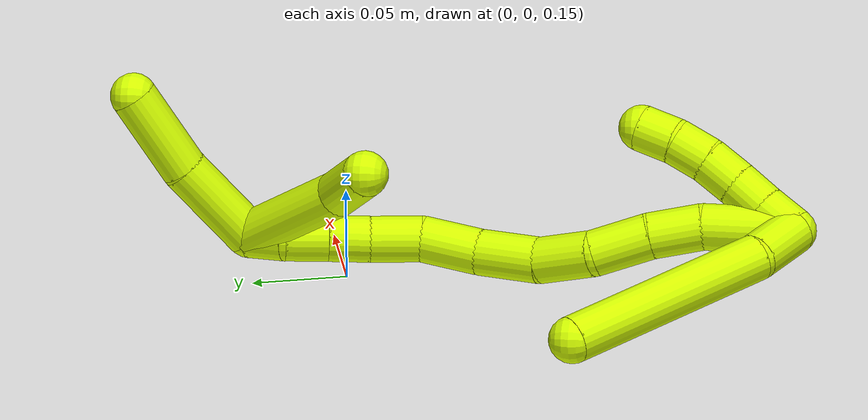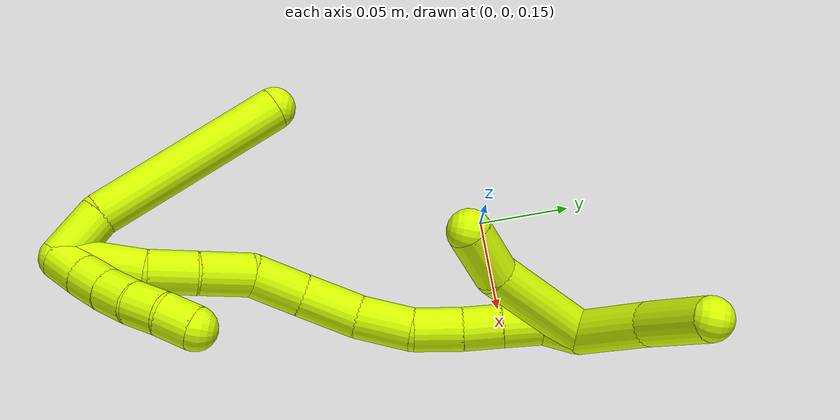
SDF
<sdf version="1.7">
 <world name="default">
  <model name="15">
   <static>0</static>
   <link name="15">
    <collision name="collision-cylinder-e_1_2_8">
     <pose>-0.013945 -0.003069 -0.007731 2.76369 -1.03298 -2.49199</pose>
     <geometry><cylinder><radius>0.0125</radius><length>0.032474</length></cylinder></geometry>
     <surface>
      <friction><ode><mu>1.16</mu><mu2>1.16</mu2><slip1>0</slip1><slip2>0</slip2></ode></friction>
      <contact><ode><kp>1e+06</kp><kd>1</kd><max_vel>0</max_vel><min_depth>0.001</min_depth></ode></contact>
     </surface>
    </collision>
    <visual name="visual-cylinder-e_1_2_8">
     <pose>-0.013945 -0.003069 -0.007731 2.76369 -1.03298 -2.49199</pose>
     <geometry><cylinder><radius>0.0125</radius><length>0.032474</length></cylinder></geometry>
     <material><ambient>0.835294 1 0 1</ambient></material>
    </visual>
    <collision name="collision-cylinder-e_2_8_6">
     <pose>-0.067975 -0.016939 -0.057049 2.88748 -0.750717 -2.5146</pose>
     <geometry><cylinder><radius>0.0125</radius><length>0.117526</length></cylinder></geometry>
     <surface>
      <friction><ode><mu>1.16</mu><mu2>1.16</mu2><slip1>0</slip1><slip2>0</slip2></ode></friction>
      <contact><ode><kp>1e+06</kp><kd>1</kd><max_vel>0</max_vel><min_depth>0.001</min_depth></ode></contact>
     </surface>
    </collision>
    <visual name="visual-cylinder-e_2_8_6">
     <pose>-0.067975 -0.016939 -0.057049 2.88748 -0.750717 -2.5146</pose>
     <geometry><cylinder><radius>0.0125</radius><length>0.117526</length></cylinder></geometry>
     <material><ambient>0.835294 1 0 1</ambient></material>
    </visual>
    <collision name="collision-cylinder-e_1_2_9">
     <pose>0.003462 0.004935 -0.007979 -2.5877 0.353517 -1.12207</pose>
     <geometry><cylinder><radius>0.0125</radius><length>0.02</length></cylinder></geometry>
     <surface>
      <friction><ode><mu>1.16</mu><mu2>1.16</mu2><slip1>0</slip1><slip2>0</slip2></ode></friction>
      <contact><ode><kp>1e+06</kp><kd>1</kd><max_vel>0</max_vel><min_depth>0.001</min_depth></ode></contact>
     </surface>
    </collision>
    <visual name="visual-cylinder-e_1_2_9">
     <pose>0.003462 0.004935 -0.007979 -2.5877 0.353517 -1.12207</pose>
     <geometry><cylinder><radius>0.0125</radius><length>0.02</length></cylinder></geometry>
     <material><ambient>0.835294 1 0 1</ambient></material>
    </visual>
    <collision name="collision-cylinder-e_2_9_10">
     <pose>0.009639 0.01551 -0.023756 -2.51539 0.274957 -0.807704</pose>
     <geometry><cylinder><radius>0.0125</radius><length>0.02</length></cylinder></geometry>
     <surface>
      <friction><ode><mu>1.16</mu><mu2>1.16</mu2><slip1>0</slip1><slip2>0</slip2></ode></friction>
      <contact><ode><kp>1e+06</kp><kd>1</kd><max_vel>0</max_vel><min_depth>0.001</min_depth></ode></contact>
     </surface>
    </collision>
    <visual name="visual-cylinder-e_2_9_10">
     <pose>0.009639 0.01551 -0.023756 -2.51539 0.274957 -0.807704</pose>
     <geometry><cylinder><radius>0.0125</radius><length>0.02</length></cylinder></geometry>
     <material><ambient>0.835294 1 0 1</ambient></material>
    </visual>
    <collision name="collision-cylinder-e_3_10_11">
     <pose>0.014265 0.026815 -0.039571 -2.52645 0.192273 -0.589481</pose>
     <geometry><cylinder><radius>0.0125</radius><length>0.02</length></cylinder></geometry>
     <surface>
      <friction><ode><mu>1.16</mu><mu2>1.16</mu2><slip1>0</slip1><slip2>0</slip2></ode></friction>
      <contact><ode><kp>1e+06</kp><kd>1</kd><max_vel>0</max_vel><min_depth>0.001</min_depth></ode></contact>
     </surface>
    </collision>
    <visual name="visual-cylinder-e_3_10_11">
     <pose>0.014265 0.026815 -0.039571 -2.52645 0.192273 -0.589481</pose>
     <geometry><cylinder><radius>0.0125</radius><length>0.02</length></cylinder></geometry>
     <material><ambient>0.835294 1 0 1</ambient></material>
    </visual>
    <collision name="collision-cylinder-e_4_11_12">
     <pose>0.017479 0.03705 -0.056386 -2.66254 0.130702 -0.523652</pose>
     <geometry><cylinder><radius>0.0125</radius><length>0.02</length></cylinder></geometry>
     <surface>
      <friction><ode><mu>1.16</mu><mu2>1.16</mu2><slip1>0</slip1><slip2>0</slip2></ode></friction>
      <contact><ode><kp>1e+06</kp><kd>1</kd><max_vel>0</max_vel><min_depth>0.001</min_depth></ode></contact>
     </surface>
    </collision>
    <visual name="visual-cylinder-e_4_11_12">
     <pose>0.017479 0.03705 -0.056386 -2.66254 0.130702 -0.523652</pose>
     <geometry><cylinder><radius>0.0125</radius><length>0.02</length></cylinder></geometry>
     <material><ambient>0.835294 1 0 1</ambient></material>
    </visual>
    <collision name="collision-cylinder-e_5_12_5">
     <pose>0.020813 0.044437 -0.074562 -2.84974 0.204481 -1.2189</pose>
     <geometry><cylinder><radius>0.0125</radius><length>0.02</length></cylinder></geometry>
     <surface>
      <friction><ode><mu>1.16</mu><mu2>1.16</mu2><slip1>0</slip1><slip2>0</slip2></ode></friction>
      <contact><ode><kp>1e+06</kp><kd>1</kd><max_vel>0</max_vel><min_depth>0.001</min_depth></ode></contact>
     </surface>
    </collision>
    <visual name="visual-cylinder-e_5_12_5">
     <pose>0.020813 0.044437 -0.074562 -2.84974 0.204481 -1.2189</pose>
     <geometry><cylinder><radius>0.0125</radius><length>0.02</length></cylinder></geometry>
     <material><ambient>0.835294 1 0 1</ambient></material>
    </visual>
    <collision name="collision-cylinder-e_1_2_13">
     <pose>-0.00094 0.000632 -0.023907 -3.11516 -0.039291 1.95719</pose>
     <geometry><cylinder><radius>0.0125</radius><length>0.047868</length></cylinder></geometry>
     <surface>
      <friction><ode><mu>1.16</mu><mu2>1.16</mu2><slip1>0</slip1><slip2>0</slip2></ode></friction>
      <contact><ode><kp>1e+06</kp><kd>1</kd><max_vel>0</max_vel><min_depth>0.001</min_depth></ode></contact>
     </surface>
    </collision>
    <visual name="visual-cylinder-e_1_2_13">
     <pose>-0.00094 0.000632 -0.023907 -3.11516 -0.039291 1.95719</pose>
     <geometry><cylinder><radius>0.0125</radius><length>0.047868</length></cylinder></geometry>
     <material><ambient>0.835294 1 0 1</ambient></material>
    </visual>
    <collision name="collision-cylinder-e_2_13_14">
     <pose>-0.004125 -0.001073 -0.061641 2.97416 -0.1587 -1.51701</pose>
     <geometry><cylinder><radius>0.0125</radius><length>0.028403</length></cylinder></geometry>
     <surface>
      <friction><ode><mu>1.16</mu><mu2>1.16</mu2><slip1>0</slip1><slip2>0</slip2></ode></friction>
      <contact><ode><kp>1e+06</kp><kd>1</kd><max_vel>0</max_vel><min_depth>0.001</min_depth></ode></contact>
     </surface>
    </collision>
    <visual name="visual-cylinder-e_2_13_14">
     <pose>-0.004125 -0.001073 -0.061641 2.97416 -0.1587 -1.51701</pose>
     <geometry><cylinder><radius>0.0125</radius><length>0.028403</length></cylinder></geometry>
     <material><ambient>0.835294 1 0 1</ambient></material>
    </visual>
    <collision name="collision-cylinder-e_3_14_15">
     <pose>-0.008856 -0.008002 -0.090361 2.84251 -0.158227 -0.968746</pose>
     <geometry><cylinder><radius>0.0125</radius><length>0.031565</length></cylinder></geometry>
     <surface>
      <friction><ode><mu>1.16</mu><mu2>1.16</mu2><slip1>0</slip1><slip2>0</slip2></ode></friction>
      <contact><ode><kp>1e+06</kp><kd>1</kd><max_vel>0</max_vel><min_depth>0.001</min_depth></ode></contact>
     </surface>
    </collision>
    <visual name="visual-cylinder-e_3_14_15">
     <pose>-0.008856 -0.008002 -0.090361 2.84251 -0.158227 -0.968746</pose>
     <geometry><cylinder><radius>0.0125</radius><length>0.031565</length></cylinder></geometry>
     <material><ambient>0.835294 1 0 1</ambient></material>
    </visual>
    <collision name="collision-cylinder-e_4_15_16">
     <pose>-0.008526 -0.015982 -0.120316 2.9203 0.180457 1.36684</pose>
     <geometry><cylinder><radius>0.0125</radius><length>0.031385</length></cylinder></geometry>
     <surface>
      <friction><ode><mu>1.16</mu><mu2>1.16</mu2><slip1>0</slip1><slip2>0</slip2></ode></friction>
      <contact><ode><kp>1e+06</kp><kd>1</kd><max_vel>0</max_vel><min_depth>0.001</min_depth></ode></contact>
     </surface>
    </collision>
    <visual name="visual-cylinder-e_4_15_16">
     <pose>-0.008526 -0.015982 -0.120316 2.9203 0.180457 1.36684</pose>
     <geometry><cylinder><radius>0.0125</radius><length>0.031385</length></cylinder></geometry>
     <material><ambient>0.835294 1 0 1</ambient></material>
    </visual>
    <collision name="collision-cylinder-e_5_16_17">
     <pose>-0.002675 -0.018634 -0.152295 -3.09808 0.177288 -2.6614</pose>
     <geometry><cylinder><radius>0.0125</radius><length>0.034407</length></cylinder></geometry>
     <surface>
      <friction><ode><mu>1.16</mu><mu2>1.16</mu2><slip1>0</slip1><slip2>0</slip2></ode></friction>
      <contact><ode><kp>1e+06</kp><kd>1</kd><max_vel>0</max_vel><min_depth>0.001</min_depth></ode></contact>
     </surface>
    </collision>
    <visual name="visual-cylinder-e_5_16_17">
     <pose>-0.002675 -0.018634 -0.152295 -3.09808 0.177288 -2.6614</pose>
     <geometry><cylinder><radius>0.0125</radius><length>0.034407</length></cylinder></geometry>
     <material><ambient>0.835294 1 0 1</ambient></material>
    </visual>
    <collision name="collision-cylinder-e_6_17_18">
     <pose>0.000988 -0.014953 -0.185001 -2.95718 0.03916 -0.417371</pose>
     <geometry><cylinder><radius>0.0125</radius><length>0.032146</length></cylinder></geometry>
     <surface>
      <friction><ode><mu>1.16</mu><mu2>1.16</mu2><slip1>0</slip1><slip2>0</slip2></ode></friction>
      <contact><ode><kp>1e+06</kp><kd>1</kd><max_vel>0</max_vel><min_depth>0.001</min_depth></ode></contact>
     </surface>
    </collision>
    <visual name="visual-cylinder-e_6_17_18">
     <pose>0.000988 -0.014953 -0.185001 -2.95718 0.03916 -0.417371</pose>
     <geometry><cylinder><radius>0.0125</radius><length>0.032146</length></cylinder></geometry>
     <material><ambient>0.835294 1 0 1</ambient></material>
    </visual>
    <collision name="collision-cylinder-e_7_18_19">
     <pose>-0.001229 -0.011683 -0.21453 -3.11794 -0.204193 2.91177</pose>
     <geometry><cylinder><radius>0.0125</radius><length>0.028072</length></cylinder></geometry>
     <surface>
      <friction><ode><mu>1.16</mu><mu2>1.16</mu2><slip1>0</slip1><slip2>0</slip2></ode></friction>
      <contact><ode><kp>1e+06</kp><kd>1</kd><max_vel>0</max_vel><min_depth>0.001</min_depth></ode></contact>
     </surface>
    </collision>
    <visual name="visual-cylinder-e_7_18_19">
     <pose>-0.001229 -0.011683 -0.21453 -3.11794 -0.204193 2.91177</pose>
     <geometry><cylinder><radius>0.0125</radius><length>0.028072</length></cylinder></geometry>
     <material><ambient>0.835294 1 0 1</ambient></material>
    </visual>
    <collision name="collision-cylinder-e_8_19_20">
     <pose>-0.007124 -0.010532 -0.239077 -3.06534 -0.274209 2.60214</pose>
     <geometry><cylinder><radius>0.0125</radius><length>0.022517</length></cylinder></geometry>
     <surface>
      <friction><ode><mu>1.16</mu><mu2>1.16</mu2><slip1>0</slip1><slip2>0</slip2></ode></friction>
      <contact><ode><kp>1e+06</kp><kd>1</kd><max_vel>0</max_vel><min_depth>0.001</min_depth></ode></contact>
     </surface>
    </collision>
    <visual name="visual-cylinder-e_8_19_20">
     <pose>-0.007124 -0.010532 -0.239077 -3.06534 -0.274209 2.60214</pose>
     <geometry><cylinder><radius>0.0125</radius><length>0.022517</length></cylinder></geometry>
     <material><ambient>0.835294 1 0 1</ambient></material>
    </visual>
    <collision name="collision-cylinder-e_9_20_21">
     <pose>-0.013223 -0.009027 -0.260996 -3.08052 -0.26745 2.69504</pose>
     <geometry><cylinder><radius>0.0125</radius><length>0.023088</length></cylinder></geometry>
     <surface>
      <friction><ode><mu>1.16</mu><mu2>1.16</mu2><slip1>0</slip1><slip2>0</slip2></ode></friction>
      <contact><ode><kp>1e+06</kp><kd>1</kd><max_vel>0</max_vel><min_depth>0.001</min_depth></ode></contact>
     </surface>
    </collision>
    <visual name="visual-cylinder-e_9_20_21">
     <pose>-0.013223 -0.009027 -0.260996 -3.08052 -0.26745 2.69504</pose>
     <geometry><cylinder><radius>0.0125</radius><length>0.023088</length></cylinder></geometry>
     <material><ambient>0.835294 1 0 1</ambient></material>
    </visual>
    <collision name="collision-cylinder-e_10_21_1">
     <pose>-0.015484 -0.008007 -0.282348 -3.10833 0.07701 -2.32654</pose>
     <geometry><cylinder><radius>0.0125</radius><length>0.02055</length></cylinder></geometry>
     <surface>
      <friction><ode><mu>1.16</mu><mu2>1.16</mu2><slip1>0</slip1><slip2>0</slip2></ode></friction>
      <contact><ode><kp>1e+06</kp><kd>1</kd><max_vel>0</max_vel><min_depth>0.001</min_depth></ode></contact>
     </surface>
    </collision>
    <visual name="visual-cylinder-e_10_21_1">
     <pose>-0.015484 -0.008007 -0.282348 -3.10833 0.07701 -2.32654</pose>
     <geometry><cylinder><radius>0.0125</radius><length>0.02055</length></cylinder></geometry>
     <material><ambient>0.835294 1 0 1</ambient></material>
    </visual>
    <collision name="collision-cylinder-e_1_1_22">
     <pose>-0.025788 0.008093 -0.264973 -0.518587 -0.335736 0.089845</pose>
     <geometry><cylinder><radius>0.0125</radius><length>0.067348</length></cylinder></geometry>
     <surface>
      <friction><ode><mu>1.16</mu><mu2>1.16</mu2><slip1>0</slip1><slip2>0</slip2></ode></friction>
      <contact><ode><kp>1e+06</kp><kd>1</kd><max_vel>0</max_vel><min_depth>0.001</min_depth></ode></contact>
     </surface>
    </collision>
    <visual name="visual-cylinder-e_1_1_22">
     <pose>-0.025788 0.008093 -0.264973 -0.518587 -0.335736 0.089845</pose>
     <geometry><cylinder><radius>0.0125</radius><length>0.067348</length></cylinder></geometry>
     <material><ambient>0.835294 1 0 1</ambient></material>
    </visual>
    <collision name="collision-cylinder-e_2_22_4">
     <pose>-0.04642 0.032535 -0.227351 -0.714651 -0.623913 0.239648</pose>
     <geometry><cylinder><radius>0.0125</radius><length>0.032652</length></cylinder></geometry>
     <surface>
      <friction><ode><mu>1.16</mu><mu2>1.16</mu2><slip1>0</slip1><slip2>0</slip2></ode></friction>
      <contact><ode><kp>1e+06</kp><kd>1</kd><max_vel>0</max_vel><min_depth>0.001</min_depth></ode></contact>
     </surface>
    </collision>
    <visual name="visual-cylinder-e_2_22_4">
     <pose>-0.04642 0.032535 -0.227351 -0.714651 -0.623913 0.239648</pose>
     <geometry><cylinder><radius>0.0125</radius><length>0.032652</length></cylinder></geometry>
     <material><ambient>0.835294 1 0 1</ambient></material>
    </visual>
    <collision name="collision-cylinder-e_1_1_23">
     <pose>-0.020282 0.012085 -0.308185 -2.23927 -0.218507 0.4453</pose>
     <geometry><cylinder><radius>0.0125</radius><length>0.051562</length></cylinder></geometry>
     <surface>
      <friction><ode><mu>1.16</mu><mu2>1.16</mu2><slip1>0</slip1><slip2>0</slip2></ode></friction>
      <contact><ode><kp>1e+06</kp><kd>1</kd><max_vel>0</max_vel><min_depth>0.001</min_depth></ode></contact>
     </surface>
    </collision>
    <visual name="visual-cylinder-e_1_1_23">
     <pose>-0.020282 0.012085 -0.308185 -2.23927 -0.218507 0.4453</pose>
     <geometry><cylinder><radius>0.0125</radius><length>0.051562</length></cylinder></geometry>
     <material><ambient>0.835294 1 0 1</ambient></material>
    </visual>
    <collision name="collision-cylinder-e_2_23_3">
     <pose>-0.029615 0.052639 -0.335607 -2.08761 -0.155225 0.265727</pose>
     <geometry><cylinder><radius>0.0125</radius><length>0.048438</length></cylinder></geometry>
     <surface>
      <friction><ode><mu>1.16</mu><mu2>1.16</mu2><slip1>0</slip1><slip2>0</slip2></ode></friction>
      <contact><ode><kp>1e+06</kp><kd>1</kd><max_vel>0</max_vel><min_depth>0.001</min_depth></ode></contact>
     </surface>
    </collision>
    <visual name="visual-cylinder-e_2_23_3">
     <pose>-0.029615 0.052639 -0.335607 -2.08761 -0.155225 0.265727</pose>
     <geometry><cylinder><radius>0.0125</radius><length>0.048438</length></cylinder></geometry>
     <material><ambient>0.835294 1 0 1</ambient></material>
    </visual>
    <collision name="collision-sphere-3">
     <pose>-0.033359 0.073442 -0.34743 0 -0 0</pose>
     <geometry><sphere><radius>0.0125</radius></sphere></geometry>
     <surface>
      <friction><ode><mu>1.16</mu><mu2>1.16</mu2><slip1>0</slip1><slip2>0</slip2></ode></friction>
      <contact><ode><kp>1e+06</kp><kd>1</kd><max_vel>0</max_vel><min_depth>0.001</min_depth></ode></contact>
     </surface>
    </collision>
    <visual name="visual-sphere-3">
     <pose>-0.033359 0.073442 -0.34743 0 -0 0</pose>
     <geometry><sphere><radius>0.0125</radius></sphere></geometry>
     <material><ambient>0.835294 1 0 1</ambient></material>
    </visual>
    <collision name="collision-sphere-23">
     <pose>-0.02587 0.031836 -0.323784 0 -0 0</pose>
     <geometry><sphere><radius>0.0125</radius></sphere></geometry>
     <surface>
      <friction><ode><mu>1.16</mu><mu2>1.16</mu2><slip1>0</slip1><slip2>0</slip2></ode></friction>
      <contact><ode><kp>1e+06</kp><kd>1</kd><max_vel>0</max_vel><min_depth>0.001</min_depth></ode></contact>
     </surface>
    </collision>
    <visual name="visual-sphere-23">
     <pose>-0.02587 0.031836 -0.323784 0 -0 0</pose>
     <geometry><sphere><radius>0.0125</radius></sphere></geometry>
     <material><ambient>0.835294 1 0 1</ambient></material>
    </visual>
    <collision name="collision-sphere-4">
     <pose>-0.055958 0.041219 -0.217343 0 -0 0</pose>
     <geometry><sphere><radius>0.0125</radius></sphere></geometry>
     <surface>
      <friction><ode><mu>1.16</mu><mu2>1.16</mu2><slip1>0</slip1><slip2>0</slip2></ode></friction>
      <contact><ode><kp>1e+06</kp><kd>1</kd><max_vel>0</max_vel><min_depth>0.001</min_depth></ode></contact>
     </surface>
    </collision>
    <visual name="visual-sphere-4">
     <pose>-0.055958 0.041219 -0.217343 0 -0 0</pose>
     <geometry><sphere><radius>0.0125</radius></sphere></geometry>
     <material><ambient>0.835294 1 0 1</ambient></material>
    </visual>
    <collision name="collision-sphere-22">
     <pose>-0.036882 0.023851 -0.237359 0 -0 0</pose>
     <geometry><sphere><radius>0.0125</radius></sphere></geometry>
     <surface>
      <friction><ode><mu>1.16</mu><mu2>1.16</mu2><slip1>0</slip1><slip2>0</slip2></ode></friction>
      <contact><ode><kp>1e+06</kp><kd>1</kd><max_vel>0</max_vel><min_depth>0.001</min_depth></ode></contact>
     </surface>
    </collision>
    <visual name="visual-sphere-22">
     <pose>-0.036882 0.023851 -0.237359 0 -0 0</pose>
     <geometry><sphere><radius>0.0125</radius></sphere></geometry>
     <material><ambient>0.835294 1 0 1</ambient></material>
    </visual>
    <collision name="collision-sphere-1">
     <pose>-0.014693 -0.007666 -0.292586 0 -0 0</pose>
     <geometry><sphere><radius>0.0125</radius></sphere></geometry>
     <surface>
      <friction><ode><mu>1.16</mu><mu2>1.16</mu2><slip1>0</slip1><slip2>0</slip2></ode></friction>
      <contact><ode><kp>1e+06</kp><kd>1</kd><max_vel>0</max_vel><min_depth>0.001</min_depth></ode></contact>
     </surface>
    </collision>
    <visual name="visual-sphere-1">
     <pose>-0.014693 -0.007666 -0.292586 0 -0 0</pose>
     <geometry><sphere><radius>0.0125</radius></sphere></geometry>
     <material><ambient>0.835294 1 0 1</ambient></material>
    </visual>
    <collision name="collision-sphere-21">
     <pose>-0.016274 -0.008347 -0.272109 0 -0 0</pose>
     <geometry><sphere><radius>0.0125</radius></sphere></geometry>
     <surface>
      <friction><ode><mu>1.16</mu><mu2>1.16</mu2><slip1>0</slip1><slip2>0</slip2></ode></friction>
      <contact><ode><kp>1e+06</kp><kd>1</kd><max_vel>0</max_vel><min_depth>0.001</min_depth></ode></contact>
     </surface>
    </collision>
    <visual name="visual-sphere-21">
     <pose>-0.016274 -0.008347 -0.272109 0 -0 0</pose>
     <geometry><sphere><radius>0.0125</radius></sphere></geometry>
     <material><ambient>0.835294 1 0 1</ambient></material>
    </visual>
    <collision name="collision-sphere-11">
     <pose>0.016176 0.032479 -0.047587 0 -0 0</pose>
     <geometry><sphere><radius>0.0125</radius></sphere></geometry>
     <surface>
      <friction><ode><mu>1.16</mu><mu2>1.16</mu2><slip1>0</slip1><slip2>0</slip2></ode></friction>
      <contact><ode><kp>1e+06</kp><kd>1</kd><max_vel>0</max_vel><min_depth>0.001</min_depth></ode></contact>
     </surface>
    </collision>
    <visual name="visual-sphere-11">
     <pose>0.016176 0.032479 -0.047587 0 -0 0</pose>
     <geometry><sphere><radius>0.0125</radius></sphere></geometry>
     <material><ambient>0.835294 1 0 1</ambient></material>
    </visual>
    <collision name="collision-sphere-10">
     <pose>0.012354 0.021151 -0.031554 0 -0 0</pose>
     <geometry><sphere><radius>0.0125</radius></sphere></geometry>
     <surface>
      <friction><ode><mu>1.16</mu><mu2>1.16</mu2><slip1>0</slip1><slip2>0</slip2></ode></friction>
      <contact><ode><kp>1e+06</kp><kd>1</kd><max_vel>0</max_vel><min_depth>0.001</min_depth></ode></contact>
     </surface>
    </collision>
    <visual name="visual-sphere-10">
     <pose>0.012354 0.021151 -0.031554 0 -0 0</pose>
     <geometry><sphere><radius>0.0125</radius></sphere></geometry>
     <material><ambient>0.835294 1 0 1</ambient></material>
    </visual>
    <collision name="collision-sphere-6">
     <pose>-0.108061 -0.02774 -0.098637 0 -0 0</pose>
     <geometry><sphere><radius>0.0125</radius></sphere></geometry>
     <surface>
      <friction><ode><mu>1.16</mu><mu2>1.16</mu2><slip1>0</slip1><slip2>0</slip2></ode></friction>
      <contact><ode><kp>1e+06</kp><kd>1</kd><max_vel>0</max_vel><min_depth>0.001</min_depth></ode></contact>
     </surface>
    </collision>
    <visual name="visual-sphere-6">
     <pose>-0.108061 -0.02774 -0.098637 0 -0 0</pose>
     <geometry><sphere><radius>0.0125</radius></sphere></geometry>
     <material><ambient>0.835294 1 0 1</ambient></material>
    </visual>
    <collision name="collision-sphere-9">
     <pose>0.006924 0.00987 -0.015958 0 -0 0</pose>
     <geometry><sphere><radius>0.0125</radius></sphere></geometry>
     <surface>
      <friction><ode><mu>1.16</mu><mu2>1.16</mu2><slip1>0</slip1><slip2>0</slip2></ode></friction>
      <contact><ode><kp>1e+06</kp><kd>1</kd><max_vel>0</max_vel><min_depth>0.001</min_depth></ode></contact>
     </surface>
    </collision>
    <visual name="visual-sphere-9">
     <pose>0.006924 0.00987 -0.015958 0 -0 0</pose>
     <geometry><sphere><radius>0.0125</radius></sphere></geometry>
     <material><ambient>0.835294 1 0 1</ambient></material>
    </visual>
    <collision name="collision-sphere-2">
     <geometry><sphere><radius>0.0125</radius></sphere></geometry>
     <surface>
      <friction><ode><mu>1.16</mu><mu2>1.16</mu2><slip1>0</slip1><slip2>0</slip2></ode></friction>
      <contact><ode><kp>1e+06</kp><kd>1</kd><max_vel>0</max_vel><min_depth>0.001</min_depth></ode></contact>
     </surface>
    </collision>
    <visual name="visual-sphere-2">
     <geometry><sphere><radius>0.0125</radius></sphere></geometry>
     <material><ambient>0.835294 1 0 1</ambient></material>
    </visual>
    <collision name="collision-sphere-19">
     <pose>-0.004075 -0.011358 -0.228271 0 -0 0</pose>
     <geometry><sphere><radius>0.0125</radius></sphere></geometry>
     <surface>
      <friction><ode><mu>1.16</mu><mu2>1.16</mu2><slip1>0</slip1><slip2>0</slip2></ode></friction>
      <contact><ode><kp>1e+06</kp><kd>1</kd><max_vel>0</max_vel><min_depth>0.001</min_depth></ode></contact>
     </surface>
    </collision>
    <visual name="visual-sphere-19">
     <pose>-0.004075 -0.011358 -0.228271 0 -0 0</pose>
     <geometry><sphere><radius>0.0125</radius></sphere></geometry>
     <material><ambient>0.835294 1 0 1</ambient></material>
    </visual>
    <collision name="collision-sphere-8">
     <pose>-0.027889 -0.006138 -0.015461 0 -0 0</pose>
     <geometry><sphere><radius>0.0125</radius></sphere></geometry>
     <surface>
      <friction><ode><mu>1.16</mu><mu2>1.16</mu2><slip1>0</slip1><slip2>0</slip2></ode></friction>
      <contact><ode><kp>1e+06</kp><kd>1</kd><max_vel>0</max_vel><min_depth>0.001</min_depth></ode></contact>
     </surface>
    </collision>
    <visual name="visual-sphere-8">
     <pose>-0.027889 -0.006138 -0.015461 0 -0 0</pose>
     <geometry><sphere><radius>0.0125</radius></sphere></geometry>
     <material><ambient>0.835294 1 0 1</ambient></material>
    </visual>
    <collision name="collision-sphere-12">
     <pose>0.018782 0.04162 -0.065184 0 -0 0</pose>
     <geometry><sphere><radius>0.0125</radius></sphere></geometry>
     <surface>
      <friction><ode><mu>1.16</mu><mu2>1.16</mu2><slip1>0</slip1><slip2>0</slip2></ode></friction>
      <contact><ode><kp>1e+06</kp><kd>1</kd><max_vel>0</max_vel><min_depth>0.001</min_depth></ode></contact>
     </surface>
    </collision>
    <visual name="visual-sphere-12">
     <pose>0.018782 0.04162 -0.065184 0 -0 0</pose>
     <geometry><sphere><radius>0.0125</radius></sphere></geometry>
     <material><ambient>0.835294 1 0 1</ambient></material>
    </visual>
    <collision name="collision-sphere-5">
     <pose>0.022844 0.047254 -0.08394 0 -0 0</pose>
     <geometry><sphere><radius>0.0125</radius></sphere></geometry>
     <surface>
      <friction><ode><mu>1.16</mu><mu2>1.16</mu2><slip1>0</slip1><slip2>0</slip2></ode></friction>
      <contact><ode><kp>1e+06</kp><kd>1</kd><max_vel>0</max_vel><min_depth>0.001</min_depth></ode></contact>
     </surface>
    </collision>
    <visual name="visual-sphere-5">
     <pose>0.022844 0.047254 -0.08394 0 -0 0</pose>
     <geometry><sphere><radius>0.0125</radius></sphere></geometry>
     <material><ambient>0.835294 1 0 1</ambient></material>
    </visual>
    <collision name="collision-sphere-13">
     <pose>-0.00188 0.001264 -0.047814 0 -0 0</pose>
     <geometry><sphere><radius>0.0125</radius></sphere></geometry>
     <surface>
      <friction><ode><mu>1.16</mu><mu2>1.16</mu2><slip1>0</slip1><slip2>0</slip2></ode></friction>
      <contact><ode><kp>1e+06</kp><kd>1</kd><max_vel>0</max_vel><min_depth>0.001</min_depth></ode></contact>
     </surface>
    </collision>
    <visual name="visual-sphere-13">
     <pose>-0.00188 0.001264 -0.047814 0 -0 0</pose>
     <geometry><sphere><radius>0.0125</radius></sphere></geometry>
     <material><ambient>0.835294 1 0 1</ambient></material>
    </visual>
    <collision name="collision-sphere-14">
     <pose>-0.006369 -0.00341 -0.075468 0 -0 0</pose>
     <geometry><sphere><radius>0.0125</radius></sphere></geometry>
     <surface>
      <friction><ode><mu>1.16</mu><mu2>1.16</mu2><slip1>0</slip1><slip2>0</slip2></ode></friction>
      <contact><ode><kp>1e+06</kp><kd>1</kd><max_vel>0</max_vel><min_depth>0.001</min_depth></ode></contact>
     </surface>
    </collision>
    <visual name="visual-sphere-14">
     <pose>-0.006369 -0.00341 -0.075468 0 -0 0</pose>
     <geometry><sphere><radius>0.0125</radius></sphere></geometry>
     <material><ambient>0.835294 1 0 1</ambient></material>
    </visual>
    <collision name="collision-sphere-15">
     <pose>-0.011342 -0.012594 -0.105254 0 -0 0</pose>
     <geometry><sphere><radius>0.0125</radius></sphere></geometry>
     <surface>
      <friction><ode><mu>1.16</mu><mu2>1.16</mu2><slip1>0</slip1><slip2>0</slip2></ode></friction>
      <contact><ode><kp>1e+06</kp><kd>1</kd><max_vel>0</max_vel><min_depth>0.001</min_depth></ode></contact>
     </surface>
    </collision>
    <visual name="visual-sphere-15">
     <pose>-0.011342 -0.012594 -0.105254 0 -0 0</pose>
     <geometry><sphere><radius>0.0125</radius></sphere></geometry>
     <material><ambient>0.835294 1 0 1</ambient></material>
    </visual>
    <collision name="collision-sphere-16">
     <pose>-0.005709 -0.019371 -0.135377 0 -0 0</pose>
     <geometry><sphere><radius>0.0125</radius></sphere></geometry>
     <surface>
      <friction><ode><mu>1.16</mu><mu2>1.16</mu2><slip1>0</slip1><slip2>0</slip2></ode></friction>
      <contact><ode><kp>1e+06</kp><kd>1</kd><max_vel>0</max_vel><min_depth>0.001</min_depth></ode></contact>
     </surface>
    </collision>
    <visual name="visual-sphere-16">
     <pose>-0.005709 -0.019371 -0.135377 0 -0 0</pose>
     <geometry><sphere><radius>0.0125</radius></sphere></geometry>
     <material><ambient>0.835294 1 0 1</ambient></material>
    </visual>
    <collision name="collision-sphere-17">
     <pose>0.000359 -0.017898 -0.169212 0 -0 0</pose>
     <geometry><sphere><radius>0.0125</radius></sphere></geometry>
     <surface>
      <friction><ode><mu>1.16</mu><mu2>1.16</mu2><slip1>0</slip1><slip2>0</slip2></ode></friction>
      <contact><ode><kp>1e+06</kp><kd>1</kd><max_vel>0</max_vel><min_depth>0.001</min_depth></ode></contact>
     </surface>
    </collision>
    <visual name="visual-sphere-17">
     <pose>0.000359 -0.017898 -0.169212 0 -0 0</pose>
     <geometry><sphere><radius>0.0125</radius></sphere></geometry>
     <material><ambient>0.835294 1 0 1</ambient></material>
    </visual>
    <collision name="collision-sphere-18">
     <pose>0.001617 -0.012008 -0.200789 0 -0 0</pose>
     <geometry><sphere><radius>0.0125</radius></sphere></geometry>
     <surface>
      <friction><ode><mu>1.16</mu><mu2>1.16</mu2><slip1>0</slip1><slip2>0</slip2></ode></friction>
      <contact><ode><kp>1e+06</kp><kd>1</kd><max_vel>0</max_vel><min_depth>0.001</min_depth></ode></contact>
     </surface>
    </collision>
    <visual name="visual-sphere-18">
     <pose>0.001617 -0.012008 -0.200789 0 -0 0</pose>
     <geometry><sphere><radius>0.0125</radius></sphere></geometry>
     <material><ambient>0.835294 1 0 1</ambient></material>
    </visual>
    <collision name="collision-sphere-20">
     <pose>-0.010173 -0.009706 -0.249883 0 -0 0</pose>
     <geometry><sphere><radius>0.0125</radius></sphere></geometry>
     <surface>
      <friction><ode><mu>1.16</mu><mu2>1.16</mu2><slip1>0</slip1><slip2>0</slip2></ode></friction>
      <contact><ode><kp>1e+06</kp><kd>1</kd><max_vel>0</max_vel><min_depth>0.001</min_depth></ode></contact>
     </surface>
    </collision>
    <visual name="visual-sphere-20">
     <pose>-0.010173 -0.009706 -0.249883 0 -0 0</pose>
     <geometry><sphere><radius>0.0125</radius></sphere></geometry>
     <material><ambient>0.835294 1 0 1</ambient></material>
    </visual>
    <inertial>
     <pose>-0.019266 0.003267 -0.149814 0 -0 0</pose>
     <mass>0.75</mass>
     <inertia>
      <ixx>-9.8e-05</ixx>
      <ixy>0</ixy>
      <ixz>0</ixz>
      <iyy>0.000112</iyy>
      <iyz>0</iyz>
      <izz>6.8e-05</izz>
     </inertia>
    </inertial>
   </link>
   <pose>-0.017899 -0.235106 0.167153 1.50962 0.139717 -0.368935</pose>
  </model>
 </world>
</sdf>
